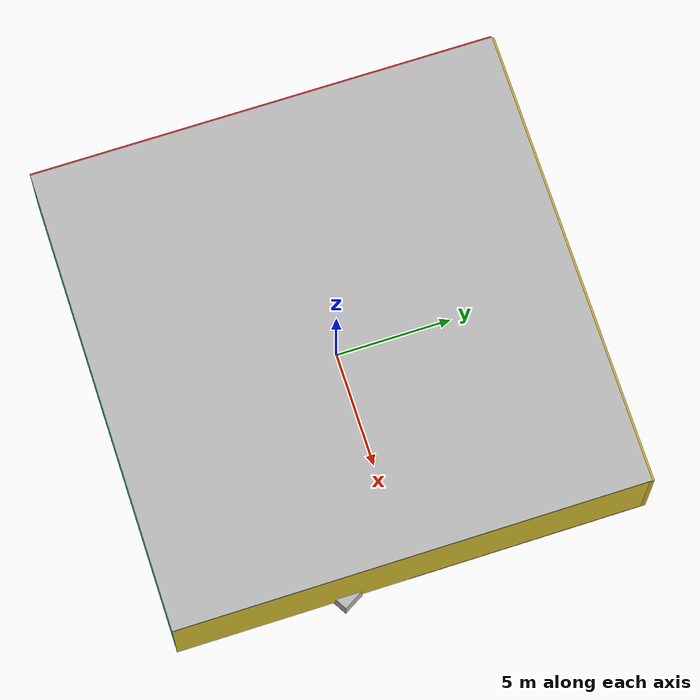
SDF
<sdf version="1.4">
 <world name="default">
  <physics type="ode">
   <max_step_size>0.001</max_step_size>
   <real_time_factor>1</real_time_factor>
   <real_time_update_rate>1000</real_time_update_rate>
   <gravity>0 0 -9.8</gravity>
  </physics>
  <scene><ambient>0.4 0.4 0.4 1</ambient><background>0.7 0.7 0.7 1</background><shadows>1</shadows></scene>
  <model name="Surrounding">
   <static>1</static>
   <link name="Ceiling">
    <collision name="Ceiling_Collision"><geometry><box><size>20 20 0.1</size></box></geometry></collision>
    <visual name="Ceiling_Visual">
     <geometry><box><size>20 20 0.1</size></box></geometry>
     <material>
      <script><uri>file://media/materials/scripts/gazebo.material</uri><name>Gazebo/JointAnchor</name></script>
     </material>
    </visual>
    <pose>0 0 4.05 0 0 0</pose>
   </link>
   <link name="Wall_South">
    <collision name="Wall_South_Collision">
     <geometry><box><size>20 0 4</size></box></geometry>
     <pose>0 0 2 0 -0 0</pose>
    </collision>
    <visual name="Wall_South_Visual">
     <pose>0 0 2 0 -0 0</pose>
     <geometry><box><size>20 0 4</size></box></geometry>
     <material>
      <script>
       <uri>file://media/materials/scripts/gazebo.material</uri>
       <name>Gazebo/TurquoiseGlowOutline</name>
      </script>
     </material>
    </visual>
    <velocity_decay><linear>0</linear><angular>0</angular></velocity_decay>
    <pose>0 -10 0 0 -0 0</pose>
   </link>
   <link name="Wall_East">
    <collision name="Wall_21_Collision">
     <geometry><box><size>20 0 4</size></box></geometry>
     <pose>0 0 2 0 -0 0</pose>
    </collision>
    <visual name="Wall_21_Visual">
     <pose>0 0 2 0 -0 0</pose>
     <geometry><box><size>20 0 4</size></box></geometry>
     <material>
      <script><uri>file://media/materials/scripts/gazebo.material</uri><name>Gazebo/ZincYellow</name></script>
     </material>
    </visual>
    <velocity_decay><linear>0</linear><angular>0</angular></velocity_decay>
    <pose>10 0 0 0 -0 1.5708</pose>
   </link>
   <link name="Wall_North">
    <collision name="Wall_22_Collision">
     <geometry><box><size>20 0.2 4</size></box></geometry>
     <pose>0 0 2 0 -0 0</pose>
    </collision>
    <visual name="Wall_22_Visual">
     <pose>0 0 2 0 -0 0</pose>
     <geometry><box><size>20 0.2 4</size></box></geometry>
     <material>
      <script><uri>file://media/materials/scripts/gazebo.material</uri><name>Gazebo/Gold</name></script>
     </material>
    </visual>
    <velocity_decay><linear>0</linear><angular>0</angular></velocity_decay>
    <pose>0 10 0 0 -0 0</pose>
   </link>
   <link name="Wall_West">
    <collision name="Wall_23_Collision">
     <geometry><box><size>20 0.2 4</size></box></geometry>
     <pose>0 0 2 0 -0 0</pose>
    </collision>
    <visual name="Wall_23_Visual">
     <pose>0 0 2 0 -0 0</pose>
     <geometry><box><size>20 0.2 4</size></box></geometry>
     <material>
      <script><uri>file://media/materials/scripts/gazebo.material</uri><name>Gazebo/RedGlow</name></script>
     </material>
    </visual>
    <velocity_decay><linear>0</linear><angular>0</angular></velocity_decay>
    <pose>-10 0 0 0 0 -1.5708</pose>
   </link>
   <link name="Ground_link">
    <collision name="collision">
     <pose>0 0 .05 0 -0 0</pose>
     <geometry><box><size>20 20 0.1</size></box></geometry>
    </collision>
    <visual name="visual">
     <pose>0 0 .05 0 -0 0</pose>
     <geometry><box><size>20 20 0.1</size></box></geometry>
     <material>
      <script><uri>file://media/materials/scripts/gazebo.material</uri><name>Gazebo/WoodFloor</name></script>
     </material>
    </visual>
   </link>
   <static>1</static>
  </model>
  <spherical_coordinates>
   <surface_model>EARTH_WGS84</surface_model>
   <latitude_deg>0</latitude_deg>
   <longitude_deg>0</longitude_deg>
   <elevation>0</elevation>
   <heading_deg>0</heading_deg>
  </spherical_coordinates>
  <light name="lightball_0" type="diffuse">
   <diffuse>0.8 0.8 0.8 1</diffuse>
   <specular>0.2 0.2 0.2 1</specular>
   <attenuation>
    <range>100</range>
    <constant>0.7</constant>
    <linear>0.01</linear>
    <quadratic>0.001</quadratic>
   </attenuation>
   <direction>-0.5 0.1 -0.9</direction>
   <pose>5.01348302285 6.66604791072 2.01692879721 0 0 0</pose>
  </light>
  <light name="lightball_1" type="diffuse">
   <diffuse>0.8 0.8 0.8 1</diffuse>
   <specular>0.2 0.2 0.2 1</specular>
   <attenuation>
    <range>100</range>
    <constant>0.7</constant>
    <linear>0.01</linear>
    <quadratic>0.001</quadratic>
   </attenuation>
   <direction>-0.5 0.1 -0.9</direction>
   <pose>0.357099642297 -1.28765979052 0.575358261549 0 0 0</pose>
  </light>
  <light name="lightball_2" type="diffuse">
   <diffuse>0.8 0.8 0.8 1</diffuse>
   <specular>0.2 0.2 0.2 1</specular>
   <attenuation>
    <range>100</range>
    <constant>0.7</constant>
    <linear>0.01</linear>
    <quadratic>0.001</quadratic>
   </attenuation>
   <direction>-0.5 0.1 -0.9</direction>
   <pose>9.91083396204 9.47069550097 0.655117615982 0 0 0</pose>
  </light>
  <light name="lightball_3" type="diffuse">
   <diffuse>0.8 0.8 0.8 1</diffuse>
   <specular>0.2 0.2 0.2 1</specular>
   <attenuation>
    <range>100</range>
    <constant>0.7</constant>
    <linear>0.01</linear>
    <quadratic>0.001</quadratic>
   </attenuation>
   <direction>-0.5 0.1 -0.9</direction>
   <pose>9.03773628734 -4.95235596416 1.96577362246 0 0 0</pose>
  </light>
  <light name="lightball_4" type="diffuse">
   <diffuse>0.8 0.8 0.8 1</diffuse>
   <specular>0.2 0.2 0.2 1</specular>
   <attenuation>
    <range>100</range>
    <constant>0.7</constant>
    <linear>0.01</linear>
    <quadratic>0.001</quadratic>
   </attenuation>
   <direction>-0.5 0.1 -0.9</direction>
   <pose>-8.92155517313 -5.65049387406 1.05100586773 0 0 0</pose>
  </light>
  <light name="lightball_5" type="diffuse">
   <diffuse>0.8 0.8 0.8 1</diffuse>
   <specular>0.2 0.2 0.2 1</specular>
   <attenuation>
    <range>100</range>
    <constant>0.7</constant>
    <linear>0.01</linear>
    <quadratic>0.001</quadratic>
   </attenuation>
   <direction>-0.5 0.1 -0.9</direction>
   <pose>-3.08377717252 3.64741473978 0.500182806685 0 0 0</pose>
  </light>
  <include>
   <uri>model://construction_cone</uri>
   <pose>-4.43957269412 -1.65634169016 0 0 0 2.07546041299</pose>
  </include>
  <include>
   <uri>model://robocup_3Dsim_goal</uri>
   <pose>-4.75852946397 2.1849940608 0 0 0 0.253192760305</pose>
  </include>
  <include><uri>model://cabinet</uri><pose>-1.10807066497 1.27663472207 0 0 0 1.90301657011</pose></include>
  <include>
   <uri>model://textured_shapes</uri>
   <pose>-1.99247238828 5.0106921073 0 0 0 0.877910262292</pose>
  </include>
  <include><uri>model://cabinet</uri><pose>1.84085436048 -1.11875156389 0 0 0 0.960893111133</pose></include>
  <include><uri>model://cabinet</uri><pose>4.54163051425 7.14336127057 0 0 0 2.06645858487</pose></include>
  <include>
   <uri>model://textured_shapes</uri>
   <pose>8.4943368973 -3.54159453475 0 0 0 2.09409697139</pose>
  </include>
  <include>
   <uri>model://robocup_3Dsim_goal</uri>
   <pose>7.78637362151 5.26488841571 0 0 0 2.37784369077</pose>
  </include>
  <include><uri>model://cabinet</uri><pose>6.49180465642 7.92387233272 0 0 0 0.483563110038</pose></include>
 </world>
</sdf>

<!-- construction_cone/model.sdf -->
<sdf version="1.5">
  <model name="Construction Cone">
    <link name="link">
      <collision name="collision">
        <geometry>
          <mesh>
            <scale>10 10 10</scale>
            <uri>file://isr-testbed/construction_cone/meshes/construction_cone.dae</uri>
          </mesh>
        </geometry>
      </collision>
      <visual name="visual">
        <geometry>
          <mesh>
            <scale>10 10 10</scale>
            <uri>file://isr-testbed/construction_cone/meshes/construction_cone.dae</uri>
          </mesh>
        </geometry>
      </visual>
    </link>
  </model>
</sdf>

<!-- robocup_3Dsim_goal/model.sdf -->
<sdf version="1.5">
  <model name="robocup_3d_goal">
    <static>true</static>
    <link name="left_post">
      <pose>0 1.05 0.45 0 0 0</pose>
      <collision name="collision">
        <geometry>
          <cylinder>
            <radius>0.05</radius>
            <length>0.9</length>
          </cylinder>
        </geometry>
      </collision>
      <visual name="visual">
        <geometry>
          <cylinder>
            <radius>0.05</radius>
            <length>0.9</length>
          </cylinder>
        </geometry>
        <material>
          <script>
            <uri>file://media/materials/scripts/gazebo.material</uri>
            <name>Gazebo/ZincYellow</name>
          </script>
        </material>
      </visual>
    </link>
    <link name="left_support_horiz_lower">
      <pose>0.30 1.05 0.01 0 0 0</pose>
      <collision name="collision">
        <geometry>
          <box>
            <size>0.50 0.02 0.02</size>
          </box>
        </geometry>
      </collision>
      <visual name="visual">
        <geometry>
          <box>
            <size>0.50 0.02 0.02</size>
          </box>
        </geometry>
        <material>
          <script>
            <uri>file://media/materials/scripts/gazebo.material</uri>
            <name>Gazebo/White</name>
          </script>
        </material>
      </visual>
    </link>
    <link name="left_support_horiz_upper">
      <pose>0.30 1.05 0.79 0 0 0</pose>
      <collision name="collision">
        <geometry>
          <box>
            <size>0.50 0.02 0.02</size>
          </box>
        </geometry>
      </collision>
      <visual name="visual">
        <geometry>
          <box>
            <size>0.50 0.02 0.02</size>
          </box>
        </geometry>
        <material>
          <script>
            <uri>file://media/materials/scripts/gazebo.material</uri>
            <name>Gazebo/White</name>
          </script>
        </material>
      </visual>
    </link>
    <link name="left_support_vertical">
      <pose>0.56 1.05 0.4 0 1.5708 0</pose>
      <collision name="collision">
        <geometry>
          <box>
            <size>0.80 0.02 0.02</size>
          </box>
        </geometry>
      </collision>
      <visual name="visual">
        <geometry>
          <box>
            <size>0.80 0.02 0.02</size>
          </box>
        </geometry>
        <material>
          <script>
            <uri>file://media/materials/scripts/gazebo.material</uri>
            <name>Gazebo/White</name>
          </script>
        </material>
      </visual>
    </link>
    <link name="right_support_horiz_lower">
      <pose>0.30 -1.05 0.01 0 0 0</pose>
      <collision name="collision">
        <geometry>
          <box>
            <size>0.50 0.02 0.02</size>
          </box>
        </geometry>
      </collision>
      <visual name="visual">
        <geometry>
          <box>
            <size>0.50 0.02 0.02</size>
          </box>
        </geometry>
        <material>
          <script>
            <uri>file://media/materials/scripts/gazebo.material</uri>
            <name>Gazebo/White</name>
          </script>
        </material>
      </visual>
    </link>
    <link name="right_support_horiz_upper">
      <pose>0.30 -1.05 0.79 0 0 0</pose>
      <collision name="collision">
        <geometry>
          <box>
            <size>0.50 0.02 0.02</size>
          </box>
        </geometry>
      </collision>
      <visual name="visual">
        <geometry>
          <box>
            <size>0.50 0.02 0.02</size>
          </box>
        </geometry>
        <material>
          <script>
            <uri>file://media/materials/scripts/gazebo.material</uri>
            <name>Gazebo/White</name>
          </script>
        </material>
      </visual>
    </link>
    <link name="right_support_vertical">
      <pose>0.56 -1.05 0.4 0 1.5708 0</pose>
      <collision name="collision">
        <geometry>
          <box>
            <size>0.80 0.02 0.02</size>
          </box>
        </geometry>
      </collision>
      <visual name="visual">
        <geometry>
          <box>
            <size>0.80 0.02 0.02</size>
          </box>
        </geometry>
        <material>
          <script>
            <uri>file://media/materials/scripts/gazebo.material</uri>
            <name>Gazebo/White</name>
          </script>
        </material>
      </visual>
    </link>
    <link name="center_support_horiz_lower">
      <pose>0.56 0 0.01 0 1.5708 0</pose>
      <collision name="collision">
        <geometry>
          <box>
            <size>0.02 2.08 0.02</size>
          </box>
        </geometry>
      </collision>
      <visual name="visual">
        <geometry>
          <box>
            <size>0.02 2.08 0.02</size>
          </box>
        </geometry>
        <material>
          <script>
            <uri>file://media/materials/scripts/gazebo.material</uri>
            <name>Gazebo/White</name>
          </script>
        </material>
      </visual>
    </link>
    <link name="center_support_horiz_upper">
      <pose>0.56 0 0.79 0 1.5708 0</pose>
      <collision name="collision">
        <geometry>
          <box>
            <size>0.02 2.08 0.02</size>
          </box>
        </geometry>
      </collision>
      <visual name="visual">
        <geometry>
          <box>
            <size>0.02 2.08 0.02</size>
          </box>
        </geometry>
        <material>
          <script>
            <uri>file://media/materials/scripts/gazebo.material</uri>
            <name>Gazebo/White</name>
          </script>
        </material>
      </visual>
    </link>
    <link name="right_post">
      <pose>0 -1.05 0.45 0 0 0</pose>
      <collision name="collision">
        <geometry>
          <cylinder>
            <radius>0.05</radius>
            <length>0.9</length>
          </cylinder>
        </geometry>
      </collision>
      <visual name="visual">
        <geometry>
          <cylinder>
            <radius>0.05</radius>
            <length>0.9</length>
          </cylinder>
        </geometry>
        <material>
          <script>
            <uri>file://media/materials/scripts/gazebo.material</uri>
            <name>Gazebo/ZincYellow</name>
          </script>
        </material>
      </visual>
    </link>
    <link name="crossbar">
      <pose>0 0 0.85 1.57 1.57 0</pose>
      <collision name="collision">
        <geometry>
          <cylinder>
            <radius>0.05</radius>
            <length>2.0</length>
          </cylinder>
        </geometry>
      </collision>
      <visual name="visual">
        <geometry>
          <cylinder>
            <radius>0.05</radius>
            <length>2.0</length>
          </cylinder>
        </geometry>
        <material>
          <script>
            <uri>file://media/materials/scripts/gazebo.material</uri>
            <name>Gazebo/ZincYellow</name>
          </script>
        </material>
      </visual>
    </link>
    <link name="center_net">
      <pose>0.56 0 0.40 0 0 0</pose>
      <collision name="collision">
        <geometry>
          <box>
            <size>0.01 2.1 0.80</size>
          </box>
        </geometry>
      </collision>
      <visual name="visual">
        <geometry>
          <box>
            <size>0.01 2.1 0.80</size>
          </box>
        </geometry>
        <material>
          <script>
            <uri>model://../model_source/models/robocup09_spl_field/materials/scripts/</uri>
            <uri>model://../model_source/models/robocup09_spl_field/materials/textures/</uri>
            <name>RoboCup/Net</name>
          </script>
        </material>
      </visual>
    </link>
    <link name="left_net">
      <pose>0.30 1.05 0.40 0 0 0</pose>
      <collision name="collision">
        <geometry>
          <box>
            <size>0.50 0.01 0.76</size>
          </box>
        </geometry>
      </collision>
      <visual name="visual">
        <geometry>
          <box>
            <size>0.50 0.01 0.76</size>
          </box>
        </geometry>
        <material>
          <script>
            <uri>model://../model_source/models/robocup09_spl_field/materials/scripts/</uri>
            <uri>model://../model_source/models/robocup09_spl_field/materials/textures/</uri>
            <name>RoboCup/Net</name>
          </script>
        </material>
      </visual>
    </link>
    <link name="right_net">
      <pose>0.30 -1.05 0.40 0 0 0</pose>
      <collision name="collision">
        <geometry>
          <box>
            <size>0.50 0.01 0.76</size>
          </box>
        </geometry>
      </collision>
      <visual name="visual">
        <geometry>
          <box>
            <size>0.50 0.01 0.76</size>
          </box>
        </geometry>
        <material>
          <script>
            <uri>model://../model_source/models/robocup09_spl_field/materials/scripts/</uri>
            <uri>model://../model_source/models/robocup09_spl_field/materials/textures/</uri>
            <name>RoboCup/Net</name>
          </script>
        </material>
      </visual>
    </link>
  </model>
</sdf>

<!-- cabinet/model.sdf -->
<sdf version="1.5">
  <model name="cabinet">
    <static>true</static>
    <link name="cabinet_bottom_plate">
      <inertial>
        <pose>0 0 -1 0 0 0</pose>
        <inertia>
          <ixx>2.050000</ixx>
          <ixy>0</ixy>
          <ixz>0</ixz>
          <iyy>2.050000</iyy>
          <iyz>0</iyz>
          <izz>2.050000</izz>
        </inertia>
        <mass>25.000000</mass>
      </inertial>
      <collision name="cabinet_bottom_plate_geom">
        <pose>0 0 0.010000 0 0 0</pose>
        <geometry>
          <box>
            <size>0.450000 0.450000 0.020000</size>
          </box>
        </geometry>
      </collision>
      <visual name="cabinet_bottom_plate_geom_visual">
        <pose>0 0 0.010000 0 0 0</pose>
        <geometry>
          <box>
            <size>0.450000 0.450000 0.020000</size>
          </box>
        </geometry>
        <material>
          <script>
            <uri>model://media/materials/scripts/gazebo.material</uri>
            <name>Gazebo/Wood</name>
          </script>
        </material>
      </visual>
      <collision name="cabinet_bottom_plate_geom_cabinet_back_plate">
        <pose>0.235000 0 0.510000 0 0 0</pose>
        <geometry>
          <box>
            <size>0.020000 0.450000 1.020000</size>
          </box>
        </geometry>
      </collision>
      <visual name="cabinet_bottom_plate_geom_cabinet_back_plate_visual">
        <pose>0.235000 0 0.510000 0 0 0</pose>
        <geometry>
          <box>
            <size>0.020000 0.450000 1.020000</size>
          </box>
        </geometry>
        <material>
          <script>
            <uri>model://media/materials/scripts/gazebo.material</uri>
            <name>Gazebo/Wood</name>
          </script>
        </material>
      </visual>
      <collision name="cabinet_bottom_plate_geom_cabinet_left_plate">
        <pose>0 0.235000 0.510000 0 0 0</pose>
        <geometry>
          <box>
            <size>0.450000 0.020000 1.020000</size>
          </box>
        </geometry>
      </collision>
      <visual name="cabinet_bottom_plate_geom_cabinet_left_plate_visual">
        <pose>0 0.235000 0.510000 0 0 0</pose>
        <geometry>
          <box>
            <size>0.450000 0.020000 1.020000</size>
          </box>
        </geometry>
        <material>
          <script>
            <uri>model://media/materials/scripts/gazebo.material</uri>
            <name>Gazebo/Wood</name>
          </script>
        </material>
      </visual>
      <collision name="cabinet_bottom_plate_geom_cabinet_middle_plate">
        <pose>0 0 0.510000 0 0 0</pose>
        <geometry>
          <box>
            <size>0.450000 0.450000 0.020000</size>
          </box>
        </geometry>
      </collision>
      <visual name="cabinet_bottom_plate_geom_cabinet_middle_plate_visual">
        <pose>0 0 0.510000 0 0 0</pose>
        <geometry>
          <box>
            <size>0.450000 0.450000 0.020000</size>
          </box>
        </geometry>
        <material>
          <script>
            <uri>model://media/materials/scripts/gazebo.material</uri>
            <name>Gazebo/Wood</name>
          </script>
        </material>
      </visual>
      <collision name="cabinet_bottom_plate_geom_cabinet_right_plate">
        <pose>0 -0.235000 0.510000 0 0 0</pose>
        <geometry>
          <box>
            <size>0.450000 0.020000 1.020000</size>
          </box>
        </geometry>
      </collision>
      <visual name="cabinet_bottom_plate_geom_cabinet_right_plate_visual">
        <pose>0 -0.235000 0.510000 0 0 0</pose>
        <geometry>
          <box>
            <size>0.450000 0.020000 1.020000</size>
          </box>
        </geometry>
        <material>
          <script>
            <uri>model://media/materials/scripts/gazebo.material</uri>
            <name>Gazebo/Wood</name>
          </script>
        </material>
      </visual>
      <collision name="cabinet_bottom_plate_geom_cabinet_top_plate">
        <pose>0 0 1.010000 0 0 0</pose>
        <geometry>
          <box>
            <size>0.450000 0.450000 0.020000</size>
          </box>
        </geometry>
      </collision>
      <visual name="cabinet_bottom_plate_geom_cabinet_top_plate_visual">
        <pose>0 0 1.010000 0 0 0</pose>
        <geometry>
          <box>
            <size>0.450000 0.450000 0.020000</size>
          </box>
        </geometry>
        <material>
          <script>
            <uri>model://media/materials/scripts/gazebo.material</uri>
            <name>Gazebo/Wood</name>
          </script>
        </material>
      </visual>
    </link>
  </model>
</sdf>

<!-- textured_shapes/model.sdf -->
<sdf version="1.6">
  <model name="textured_shapes">
    <pose>0 0 0.5 0 0 0</pose>
    <link name="box">
      <pose>0 -1.5 0 0 0 0</pose>
      <collision name="collision">
        <geometry>
          <box>
            <size>1 1 1</size>
          </box>
        </geometry>
      </collision>
      <visual name="visual">
        <geometry>
          <box>
            <size>1 1 1</size>
          </box>
        </geometry>
        <material>
          <script>
            <uri>model://../model_source/models/textured_shapes/materials/scripts</uri>
            <uri>model://../model_source/models/textured_shapes/materials/textures</uri>
            <name>TexturedShape/Squares</name>
          </script>
        </material>
      </visual>
    </link>
    <link name="sphere">
      <collision name="collision">
        <geometry>
          <sphere>
            <radius>0.5</radius>
          </sphere>
        </geometry>
      </collision>
      <visual name="visual">
        <geometry>
          <sphere>
            <radius>0.5</radius>
          </sphere>
        </geometry>
        <material>
          <script>
            <uri>model://../model_source/models/textured_shapes/materials/scripts</uri>
            <uri>model://../model_source/models/textured_shapes/materials/textures</uri>
            <name>TexturedShape/Squares</name>
          </script>
        </material>
      </visual>
    </link>
    <link name="cylinder">
      <pose>0 1.5 0 0 0 0</pose>
      <collision name="collision">
        <geometry>
          <cylinder>
            <radius>0.5</radius>
            <length>1</length>
          </cylinder>
        </geometry>
      </collision>
      <visual name="visual">
        <geometry>
          <cylinder>
            <radius>0.5</radius>
            <length>1</length>
          </cylinder>
        </geometry>
        <material>
          <script>
            <uri>model://../model_source/models/textured_shapes/materials/scripts</uri>
            <uri>model://../model_source/models/textured_shapes/materials/textures</uri>
            <name>TexturedShape/Squares</name>
          </script>
        </material>
      </visual>
    </link>
  </model>
</sdf>
